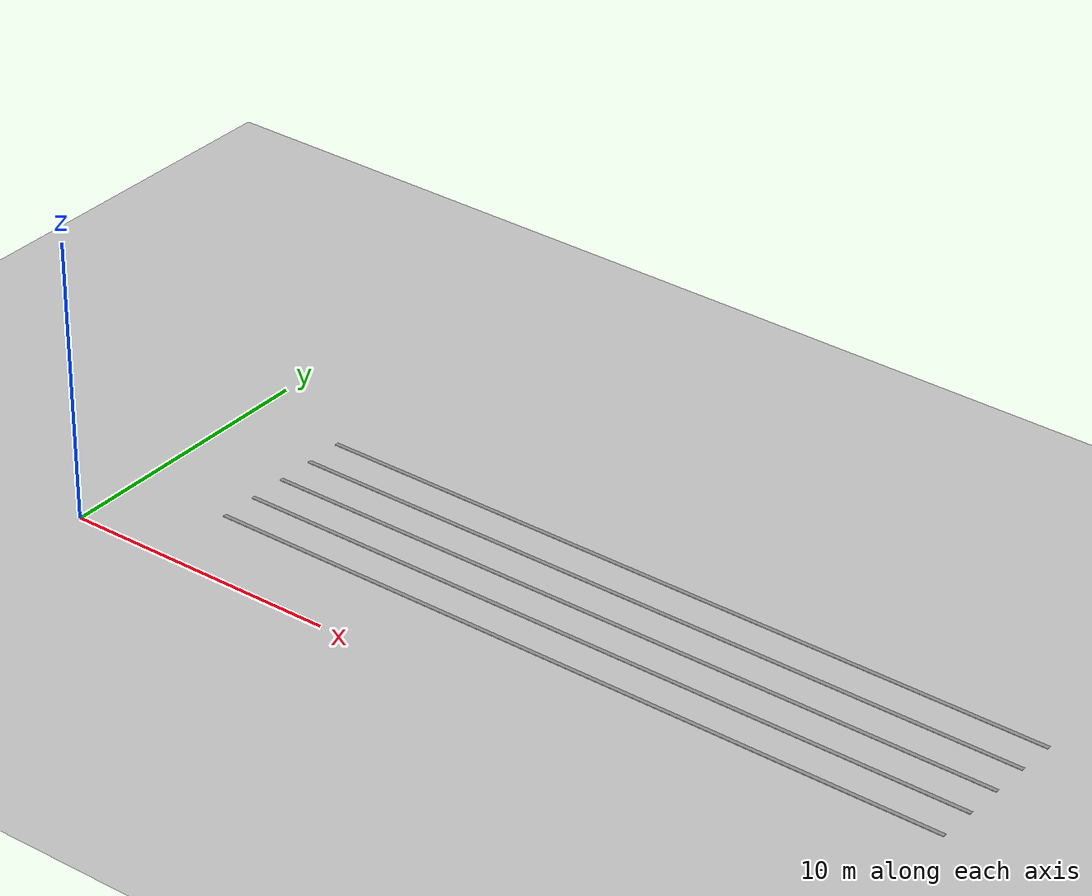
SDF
<sdf version="1.4">
 <world name="default">
  <model name="tray_0">
   <static>1</static>
   <link name="link_0">
    <inertial>
     <mass>0.019881</mass>
     <inertia>
      <ixz>0</ixz>
      <ixx>4.769e-05</ixx>
      <ixy>0</ixy>
      <izz>0.0104111</izz>
      <iyy>0.0103713</iyy>
      <iyz>0</iyz>
     </inertia>
    </inertial>
    <collision name="collision">
     <geometry><box><size>27.09 0.15 0.02</size></box></geometry>
     <pose>18.54 1.35 1.38235 0.0 0.0 0.0</pose>
     <surface>
      <contact>
       <collide_without_contact>0</collide_without_contact>
       <collide_without_contact_bitmask>1</collide_without_contact_bitmask>
       <collide_bitmask>1</collide_bitmask>
       <bullet>
        <kd>1</kd>
        <split_impulse>1</split_impulse>
        <soft_erp>0.2</soft_erp>
        <split_impulse_penetration_threshold>-0.01</split_impulse_penetration_threshold>
        <kp>1e+13</kp>
        <soft_cfm>0</soft_cfm>
       </bullet>
       <ode>
        <max_vel>0.01</max_vel>
        <kd>1</kd>
        <soft_erp>0.2</soft_erp>
        <min_depth>0</min_depth>
        <kp>1e+13</kp>
        <soft_cfm>0</soft_cfm>
       </ode>
      </contact>
      <friction>
       <ode><mu>1</mu><slip2>0</slip2><slip1>0</slip1><fdir1>0 0 0</fdir1><mu2>1</mu2></ode>
       <torsional>
        <coefficient>1</coefficient>
        <surface_radius>0</surface_radius>
        <patch_radius>0</patch_radius>
        <ode><slip>0</slip></ode>
        <use_patch_radius>1</use_patch_radius>
       </torsional>
      </friction>
      <bounce><threshold>1e+06</threshold><restitution_coefficient>0</restitution_coefficient></bounce>
     </surface>
    </collision>
    <visual name="visual">
     <pose>18.54 1.35 1.38235 0.0 0.0 0.0</pose>
     <geometry><box><size>27.09 0.15 0.02</size></box></geometry>
     <material>
      <script><uri>file://media/materials/scripts/gazebo.material</uri><name>Gazebo/Grey</name></script>
      <emissive>0 0 0 1</emissive>
      <shader type="vertex"><normal_map>__default__</normal_map></shader>
      <specular>0.01 0.01 0.01 1</specular>
      <lighting>1</lighting>
      <ambient>0.3 0.3 0.3 1</ambient>
      <diffuse>0.7 0.7 0.7 1</diffuse>
     </material>
    </visual>
   </link>
  </model>
  <model name="tray_1">
   <static>1</static>
   <link name="link_0">
    <inertial>
     <mass>0.019881</mass>
     <inertia>
      <ixz>0</ixz>
      <ixx>4.769e-05</ixx>
      <ixy>0</ixy>
      <izz>0.0104111</izz>
      <iyy>0.0103713</iyy>
      <iyz>0</iyz>
     </inertia>
    </inertial>
    <collision name="collision">
     <geometry><box><size>27.09 0.15 0.02</size></box></geometry>
     <pose>18.54 2.70 1.38235 0.0 0.0 0.0</pose>
     <surface>
      <contact>
       <collide_without_contact>0</collide_without_contact>
       <collide_without_contact_bitmask>1</collide_without_contact_bitmask>
       <collide_bitmask>1</collide_bitmask>
       <bullet>
        <kd>1</kd>
        <split_impulse>1</split_impulse>
        <soft_erp>0.2</soft_erp>
        <split_impulse_penetration_threshold>-0.01</split_impulse_penetration_threshold>
        <kp>1e+13</kp>
        <soft_cfm>0</soft_cfm>
       </bullet>
       <ode>
        <max_vel>0.01</max_vel>
        <kd>1</kd>
        <soft_erp>0.2</soft_erp>
        <min_depth>0</min_depth>
        <kp>1e+13</kp>
        <soft_cfm>0</soft_cfm>
       </ode>
      </contact>
      <friction>
       <ode><mu>1</mu><slip2>0</slip2><slip1>0</slip1><fdir1>0 0 0</fdir1><mu2>1</mu2></ode>
       <torsional>
        <coefficient>1</coefficient>
        <surface_radius>0</surface_radius>
        <patch_radius>0</patch_radius>
        <ode><slip>0</slip></ode>
        <use_patch_radius>1</use_patch_radius>
       </torsional>
      </friction>
      <bounce><threshold>1e+06</threshold><restitution_coefficient>0</restitution_coefficient></bounce>
     </surface>
    </collision>
    <visual name="visual">
     <pose>18.54 2.70 1.38235 0.0 0.0 0.0</pose>
     <geometry><box><size>27.09 0.15 0.02</size></box></geometry>
     <material>
      <script><uri>file://media/materials/scripts/gazebo.material</uri><name>Gazebo/Grey</name></script>
      <emissive>0 0 0 1</emissive>
      <shader type="vertex"><normal_map>__default__</normal_map></shader>
      <specular>0.01 0.01 0.01 1</specular>
      <lighting>1</lighting>
      <ambient>0.3 0.3 0.3 1</ambient>
      <diffuse>0.7 0.7 0.7 1</diffuse>
     </material>
    </visual>
   </link>
  </model>
  <model name="tray_2">
   <static>1</static>
   <link name="link_0">
    <inertial>
     <mass>0.019881</mass>
     <inertia>
      <ixz>0</ixz>
      <ixx>4.769e-05</ixx>
      <ixy>0</ixy>
      <izz>0.0104111</izz>
      <iyy>0.0103713</iyy>
      <iyz>0</iyz>
     </inertia>
    </inertial>
    <collision name="collision">
     <geometry><box><size>27.09 0.15 0.02</size></box></geometry>
     <pose>18.54 4.05 1.38235 0.0 0.0 0.0</pose>
     <surface>
      <contact>
       <collide_without_contact>0</collide_without_contact>
       <collide_without_contact_bitmask>1</collide_without_contact_bitmask>
       <collide_bitmask>1</collide_bitmask>
       <bullet>
        <kd>1</kd>
        <split_impulse>1</split_impulse>
        <soft_erp>0.2</soft_erp>
        <split_impulse_penetration_threshold>-0.01</split_impulse_penetration_threshold>
        <kp>1e+13</kp>
        <soft_cfm>0</soft_cfm>
       </bullet>
       <ode>
        <max_vel>0.01</max_vel>
        <kd>1</kd>
        <soft_erp>0.2</soft_erp>
        <min_depth>0</min_depth>
        <kp>1e+13</kp>
        <soft_cfm>0</soft_cfm>
       </ode>
      </contact>
      <friction>
       <ode><mu>1</mu><slip2>0</slip2><slip1>0</slip1><fdir1>0 0 0</fdir1><mu2>1</mu2></ode>
       <torsional>
        <coefficient>1</coefficient>
        <surface_radius>0</surface_radius>
        <patch_radius>0</patch_radius>
        <ode><slip>0</slip></ode>
        <use_patch_radius>1</use_patch_radius>
       </torsional>
      </friction>
      <bounce><threshold>1e+06</threshold><restitution_coefficient>0</restitution_coefficient></bounce>
     </surface>
    </collision>
    <visual name="visual">
     <pose>18.54 4.05 1.38235 0.0 0.0 0.0</pose>
     <geometry><box><size>27.09 0.15 0.02</size></box></geometry>
     <material>
      <script><uri>file://media/materials/scripts/gazebo.material</uri><name>Gazebo/Grey</name></script>
      <emissive>0 0 0 1</emissive>
      <shader type="vertex"><normal_map>__default__</normal_map></shader>
      <specular>0.01 0.01 0.01 1</specular>
      <lighting>1</lighting>
      <ambient>0.3 0.3 0.3 1</ambient>
      <diffuse>0.7 0.7 0.7 1</diffuse>
     </material>
    </visual>
   </link>
  </model>
  <model name="tray_3">
   <static>1</static>
   <link name="link_0">
    <inertial>
     <mass>0.019881</mass>
     <inertia>
      <ixz>0</ixz>
      <ixx>4.769e-05</ixx>
      <ixy>0</ixy>
      <izz>0.0104111</izz>
      <iyy>0.0103713</iyy>
      <iyz>0</iyz>
     </inertia>
    </inertial>
    <collision name="collision">
     <geometry><box><size>27.09 0.15 0.02</size></box></geometry>
     <pose>18.54 5.40 1.38235 0.0 0.0 0.0</pose>
     <surface>
      <contact>
       <collide_without_contact>0</collide_without_contact>
       <collide_without_contact_bitmask>1</collide_without_contact_bitmask>
       <collide_bitmask>1</collide_bitmask>
       <bullet>
        <kd>1</kd>
        <split_impulse>1</split_impulse>
        <soft_erp>0.2</soft_erp>
        <split_impulse_penetration_threshold>-0.01</split_impulse_penetration_threshold>
        <kp>1e+13</kp>
        <soft_cfm>0</soft_cfm>
       </bullet>
       <ode>
        <max_vel>0.01</max_vel>
        <kd>1</kd>
        <soft_erp>0.2</soft_erp>
        <min_depth>0</min_depth>
        <kp>1e+13</kp>
        <soft_cfm>0</soft_cfm>
       </ode>
      </contact>
      <friction>
       <ode><mu>1</mu><slip2>0</slip2><slip1>0</slip1><fdir1>0 0 0</fdir1><mu2>1</mu2></ode>
       <torsional>
        <coefficient>1</coefficient>
        <surface_radius>0</surface_radius>
        <patch_radius>0</patch_radius>
        <ode><slip>0</slip></ode>
        <use_patch_radius>1</use_patch_radius>
       </torsional>
      </friction>
      <bounce><threshold>1e+06</threshold><restitution_coefficient>0</restitution_coefficient></bounce>
     </surface>
    </collision>
    <visual name="visual">
     <pose>18.54 5.40 1.38235 0.0 0.0 0.0</pose>
     <geometry><box><size>27.09 0.15 0.02</size></box></geometry>
     <material>
      <script><uri>file://media/materials/scripts/gazebo.material</uri><name>Gazebo/Grey</name></script>
      <emissive>0 0 0 1</emissive>
      <shader type="vertex"><normal_map>__default__</normal_map></shader>
      <specular>0.01 0.01 0.01 1</specular>
      <lighting>1</lighting>
      <ambient>0.3 0.3 0.3 1</ambient>
      <diffuse>0.7 0.7 0.7 1</diffuse>
     </material>
    </visual>
   </link>
  </model>
  <model name="tray_4">
   <static>1</static>
   <link name="link_0">
    <inertial>
     <mass>0.019881</mass>
     <inertia>
      <ixz>0</ixz>
      <ixx>4.769e-05</ixx>
      <ixy>0</ixy>
      <izz>0.0104111</izz>
      <iyy>0.0103713</iyy>
      <iyz>0</iyz>
     </inertia>
    </inertial>
    <collision name="collision">
     <geometry><box><size>27.09 0.15 0.02</size></box></geometry>
     <pose>18.54 6.75 1.38235 0.0 0.0 0.0</pose>
     <surface>
      <contact>
       <collide_without_contact>0</collide_without_contact>
       <collide_without_contact_bitmask>1</collide_without_contact_bitmask>
       <collide_bitmask>1</collide_bitmask>
       <bullet>
        <kd>1</kd>
        <split_impulse>1</split_impulse>
        <soft_erp>0.2</soft_erp>
        <split_impulse_penetration_threshold>-0.01</split_impulse_penetration_threshold>
        <kp>1e+13</kp>
        <soft_cfm>0</soft_cfm>
       </bullet>
       <ode>
        <max_vel>0.01</max_vel>
        <kd>1</kd>
        <soft_erp>0.2</soft_erp>
        <min_depth>0</min_depth>
        <kp>1e+13</kp>
        <soft_cfm>0</soft_cfm>
       </ode>
      </contact>
      <friction>
       <ode><mu>1</mu><slip2>0</slip2><slip1>0</slip1><fdir1>0 0 0</fdir1><mu2>1</mu2></ode>
       <torsional>
        <coefficient>1</coefficient>
        <surface_radius>0</surface_radius>
        <patch_radius>0</patch_radius>
        <ode><slip>0</slip></ode>
        <use_patch_radius>1</use_patch_radius>
       </torsional>
      </friction>
      <bounce><threshold>1e+06</threshold><restitution_coefficient>0</restitution_coefficient></bounce>
     </surface>
    </collision>
    <visual name="visual">
     <pose>18.54 6.75 1.38235 0.0 0.0 0.0</pose>
     <geometry><box><size>27.09 0.15 0.02</size></box></geometry>
     <material>
      <script><uri>file://media/materials/scripts/gazebo.material</uri><name>Gazebo/Grey</name></script>
      <emissive>0 0 0 1</emissive>
      <shader type="vertex"><normal_map>__default__</normal_map></shader>
      <specular>0.01 0.01 0.01 1</specular>
      <lighting>1</lighting>
      <ambient>0.3 0.3 0.3 1</ambient>
      <diffuse>0.7 0.7 0.7 1</diffuse>
     </material>
    </visual>
   </link>
  </model>
  <include><uri>model://sun</uri></include>
  <include><uri>model://ground_plane</uri></include>
 </world>
</sdf>
